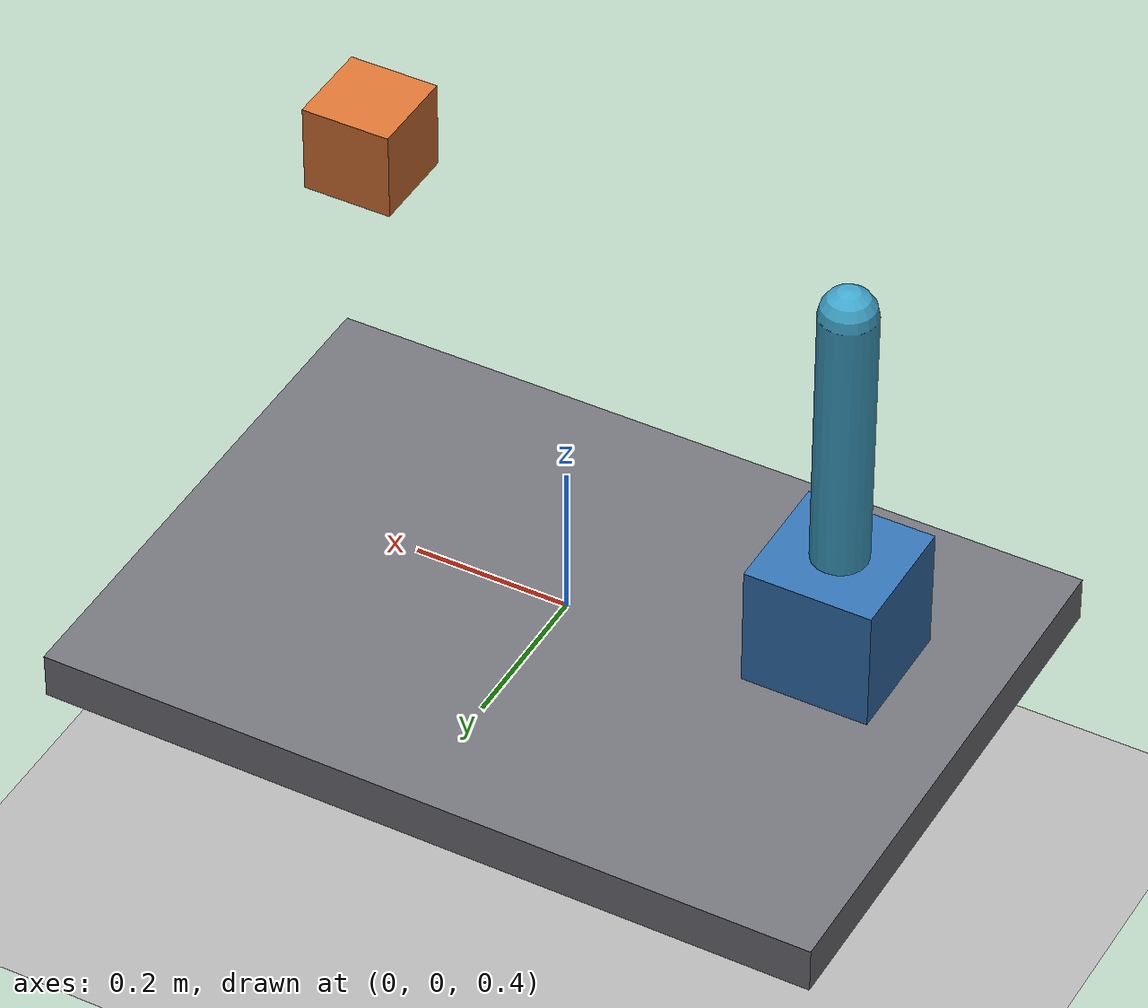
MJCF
<mujoco model="robobuddy_vertical_slice">
  <compiler angle="radian" coordinate="local"/>
  <option timestep="0.002" integrator="RK4" gravity="0 0 -9.81"/>
  <default>
    <geom friction="0.8 0.02 0.002" condim="3"/>
    <joint damping="0.1"/>
  </default>
  <worldbody>
    <light pos="0 0 3" dir="0 0 -1"/>
    <geom name="floor" type="plane" size="2 2 0.1" rgba="0.7 0.7 0.7 1"/>
    <body name="table" pos="0 0 0.35">
      <geom name="table_top" type="box" size="0.5 0.35 0.03" mass="8" rgba="0.45 0.45 0.48 1"/>
    </body>
    <body name="pendulum_base" pos="-0.35 0 0.55">
      <geom type="box" size="0.08 0.08 0.08" mass="1" rgba="0.2 0.45 0.7 1"/>
      <body name="link" pos="0 0 0.08">
        <joint name="hinge" type="hinge" axis="0 1 0" range="-1.57 1.57" limited="true"/>
        <geom name="link_geom" type="capsule" fromto="0 0 0 0 0 0.35" size="0.035" mass="0.5" rgba="0.25 0.65 0.8 1"/>
      </body>
    </body>
    <body name="free_box" pos="0.25 0 1.0">
      <freejoint/>
      <geom name="free_box_geom" type="box" size="0.055 0.055 0.055" mass="0.25" rgba="0.85 0.45 0.2 1"/>
    </body>
  </worldbody>
  <actuator>
    <position name="hinge_position" joint="hinge" kp="20" ctrllimited="true" ctrlrange="-1.2 1.2" forcelimited="true" forcerange="-5 5"/>
  </actuator>
  <sensor>
    <jointpos name="hinge_pos" joint="hinge"/>
    <jointvel name="hinge_vel" joint="hinge"/>
    <framepos name="box_pos" objtype="body" objname="free_box"/>
  </sensor>
</mujoco>
